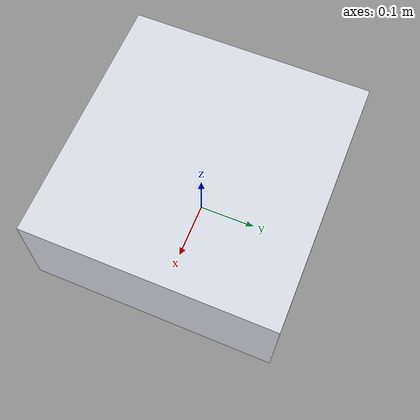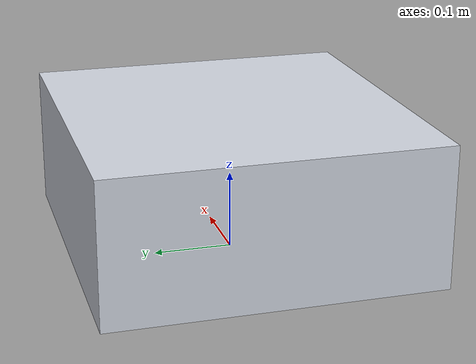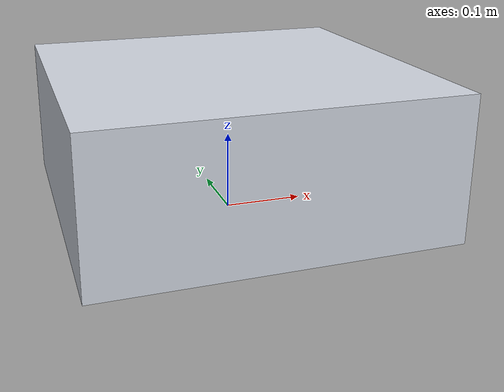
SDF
<?xml version="1.0"?>
<sdf version="1.8">
  <model name="atrium_chassis_rgbd">
    <static>false</static>
    <self_collide>false</self_collide>
    <link name="base_link">
      <!-- Simplified physics proxy for the myAGV chassis and its arm payload.
           The full Pro450 model is published in RViz from robot_description. -->
      <pose>0 0 0.10 0 0 0</pose>
      <gravity>true</gravity>
      <inertial>
        <mass>24.0</mass>
        <inertia>
          <ixx>0.52</ixx><iyy>0.52</iyy><izz>0.72</izz>
          <ixy>0</ixy><ixz>0</ixz><iyz>0</iyz>
        </inertia>
      </inertial>
      <collision name="chassis_collision">
        <geometry><box><size>0.44 0.42 0.18</size></box></geometry>
        <surface>
          <friction><ode><mu>1.0</mu><mu2>1.0</mu2></ode></friction>
        </surface>
      </collision>
      <visual name="chassis_proxy_vis">
        <geometry><box><size>0.44 0.42 0.18</size></box></geometry>
        <material>
          <ambient>0.70 0.72 0.76 1</ambient>
          <diffuse>0.82 0.84 0.88 1</diffuse>
        </material>
      </visual>
      <!-- Fortress rgbd looks along +X. Stamp as optical frame used by RTAB-Map /
           depthimage_to_laserscan (URDF maps optical Z → robot forward). -->
      <sensor name="chassis_rgbd_camera" type="rgbd_camera">
        <!-- base_link is at z=0.10; desired camera pose is
             base_footprint + (0.23191, 0, 0.16928). -->
        <pose>0.23191 0 0.06928 0 0 0</pose>
        <gz_frame_id>camera_link</gz_frame_id>
        <always_on>true</always_on>
        <update_rate>15</update_rate>
        <visualize>true</visualize>
        <topic>/camera_gz</topic>
        <camera>
          <horizontal_fov>1.396263</horizontal_fov>
          <image>
            <width>640</width>
            <height>480</height>
            <format>R8G8B8</format>
          </image>
          <clip>
            <near>0.15</near>
            <far>8.0</far>
          </clip>
        </camera>
      </sensor>
    </link>
    <plugin
      filename="ignition-gazebo-velocity-control-system"
      name="gz::sim::systems::VelocityControl">
    </plugin>
    <plugin
      filename="ignition-gazebo-odometry-publisher-system"
      name="gz::sim::systems::OdometryPublisher">
      <odom_frame>odom</odom_frame>
      <robot_base_frame>base_footprint</robot_base_frame>
      <dimensions>2</dimensions>
      <odom_publish_frequency>50</odom_publish_frequency>
      <odom_topic>/model/atrium_chassis_rgbd/odometry</odom_topic>
      <tf_topic>/model/atrium_chassis_rgbd/tf</tf_topic>
    </plugin>
  </model>
</sdf>
